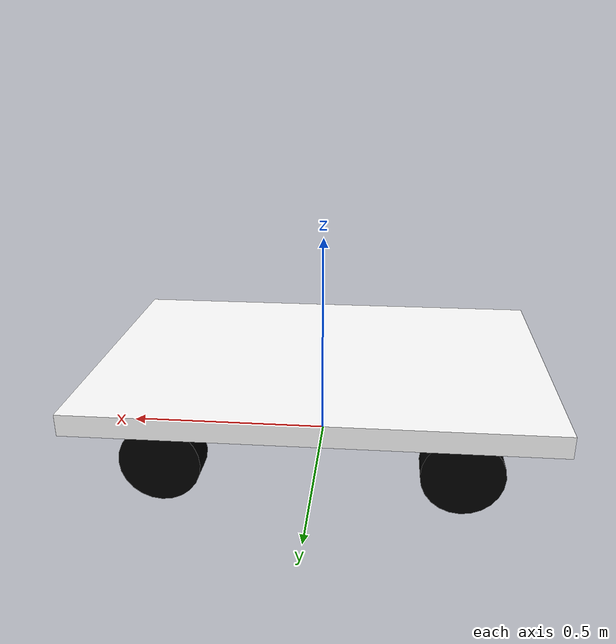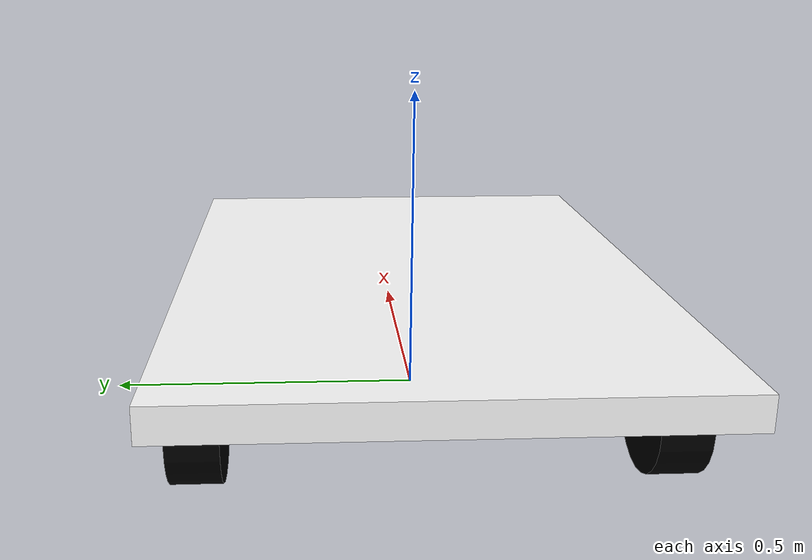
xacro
<?xml version="1.0" ?>
<robot name="robot" xmlns:xacro="http://www.ros.org/wiki/xacro">

    <!-- 參數 -->
    <xacro:property name="wheel_radius" value="0.09"/>
    <xacro:property name="wheel_length" value="0.073"/>

    <xacro:property name="base_size_x" value="1.08"/>
    <xacro:property name="base_size_y" value="0.76"/>
    <xacro:property name="base_height" value="0.05"/>

    <xacro:property name="wheel_offset_x" value="0.325"/>
    <xacro:property name="wheel_offset_y" value="0.3285"/>
    <xacro:property name="wheel_z" value="0.09"/>

    <xacro:property name="Lx" value="0.65"/>
    <xacro:property name="Ly" value="0.665"/>

    <!-- 機器人底盤 -->
    <link name="base_link">
        <visual>
            <origin xyz="0 0 0.18" rpy="0 0 0" />
            <geometry>
                <box size="${base_size_x} ${base_size_y} ${base_height}"/>
            </geometry>
            <material name="white">
                <color rgba="1 1 1 1"/>
            </material>
        </visual>
    </link>

    <!-- **前輪 (主動輪) ** -->
    <joint name="left_wheel_joint" type="continuous">
        <origin xyz="${wheel_offset_x} ${wheel_offset_y} ${wheel_z}" rpy="1.57 0 0"/>
        <parent link="base_link"/>
        <child link="left_wheel"/>
        <axis xyz="0 1 0"/>
    </joint>

    <link name="left_wheel">
        <visual>
            <geometry>
                <cylinder radius="${wheel_radius}" length="${wheel_length}"/>
            </geometry>
            <material name="black">
                <color rgba="0 0 0 1"/>
            </material>
        </visual>
    </link>

    <joint name="right_wheel_joint" type="continuous">
        <origin xyz="${wheel_offset_x} -${wheel_offset_y} ${wheel_z}" rpy="1.57 0 0"/>
        <parent link="base_link"/>
        <child link="right_wheel"/>
        <axis xyz="0 1 0"/>
    </joint>

    <link name="right_wheel">
        <visual>
            <geometry>
                <cylinder radius="${wheel_radius}" length="${wheel_length}"/>
            </geometry>
            <material name="black">
                <color rgba="0 0 0 1"/>
            </material>
        </visual>
    </link>

    <!-- **後輪 (固定輪) ** -->
    <joint name="left_rear_wheel_joint" type="fixed">
        <origin xyz="-${wheel_offset_x} ${wheel_offset_y} ${wheel_z}" rpy="1.57 0 0"/>
        <parent link="base_link"/>
        <child link="left_rear_wheel"/>
    </joint>

    <link name="left_rear_wheel">
        <visual>
            <geometry>
                <cylinder radius="${wheel_radius}" length="${wheel_length}"/>
            </geometry>
            <material name="black">
                <color rgba="0 0 0 1"/>
            </material>
        </visual>
    </link>

    <joint name="right_rear_wheel_joint" type="fixed">
        <origin xyz="-${wheel_offset_x} -${wheel_offset_y} ${wheel_z}" rpy="1.57 0 0"/>
        <parent link="base_link"/>
        <child link="right_rear_wheel"/>
    </joint>

    <link name="right_rear_wheel">
        <visual>
            <geometry>
                <cylinder radius="${wheel_radius}" length="${wheel_length}"/>
            </geometry>
            <material name="black">
                <color rgba="0 0 0 1"/>
            </material>
        </visual>
    </link>

    <!-- **ros2_control 設定** -->
    <ros2_control name="MotorSet" type="system">
            <hardware>
                <plugin>motor_base/MotorSet</plugin>
                <param name="wheel_radius">${wheel_radius}</param>
                <param name="Lx">${Lx}</param>
                <param name="Ly">${Ly}</param>
            </hardware>

        <!-- 只控制前輪 -->
        <joint name="left_wheel_joint">
            <command_interface name="velocity"/>
            <state_interface name="position"/>
            <state_interface name="velocity"/>
        </joint>

        <joint name="right_wheel_joint">
            <command_interface name="velocity"/>
            <state_interface name="position"/>
            <state_interface name="velocity"/>
        </joint>

    </ros2_control>

</robot>
